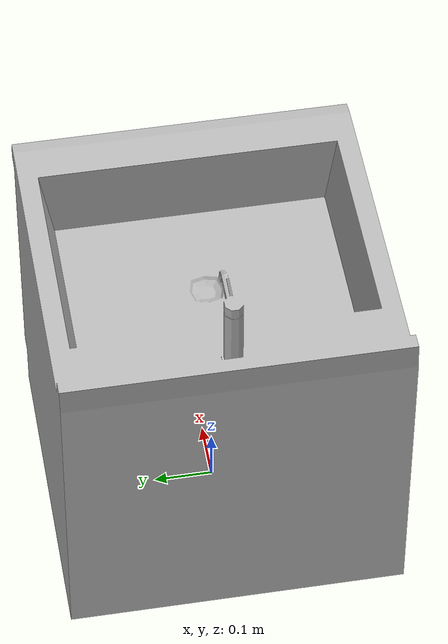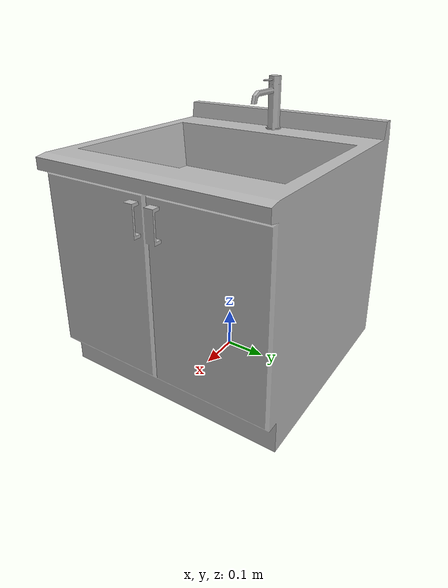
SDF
<?xml version="1.0" ?>
<sdf version="1.5">
<model name="KitchenSink">
<link name="link">
<pose>0 0 0 0 0 0</pose>
<visual name="visual">
<geometry>
<mesh>
  <uri>model://KitchenSink/meshes/kitchenSink.obj</uri>
  <scale>0.75 0.75 0.75</scale>  <!-- 50% scale -->
</mesh>
</geometry>
</visual>
<collision name="collision">
<geometry>
<mesh>
  <uri>model://KitchenSink/meshes/kitchenSink.obj</uri>
  <scale>0.75 0.75 0.75</scale>  <!-- Same scale for collision -->
</mesh>
</geometry>
</collision>
</link>
</model>
</sdf>
